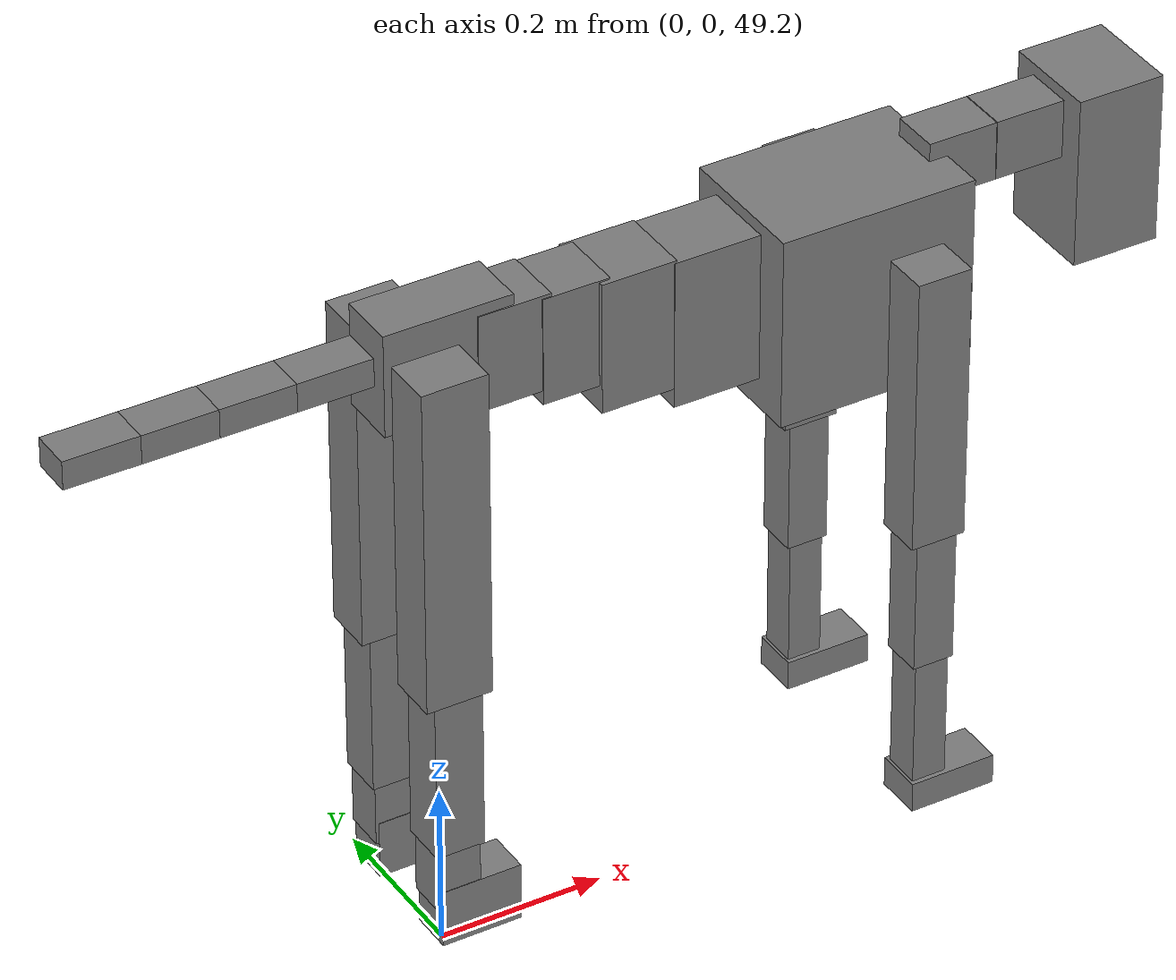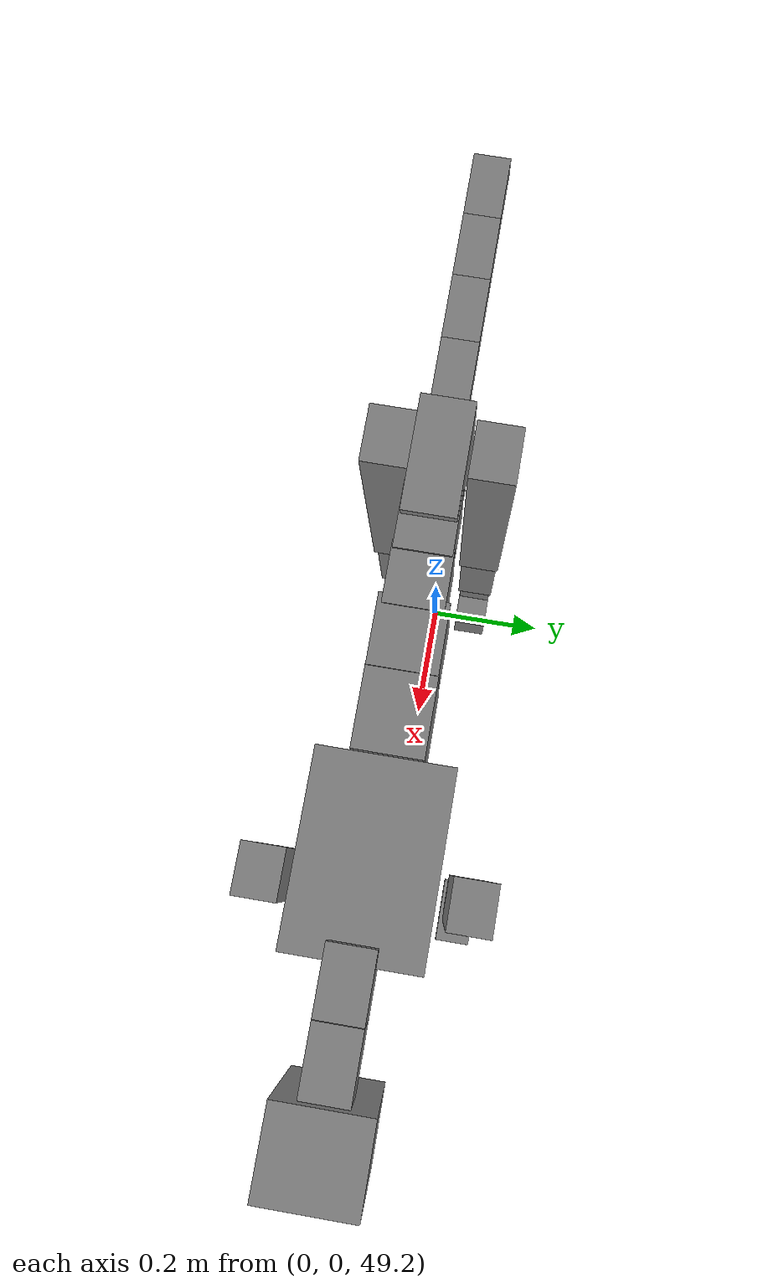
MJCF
<mujoco model="dog">

    <default>
        <joint armature="0.02" stiffness="1" damping="0.2" limited="true"/>
        <geom condim="3" friction="1 0.05 0.05" margin="0.01"/>
        <motor ctrllimited="true" ctrlrange="-1.0 1.0" forcelimited="true" gear="50"/>
    </default>

    <compiler inertiafromgeom="true" angle="radian"/>

    <option timestep="0.016" iterations="50" tolerance="1e-10" solver="Newton" jacobian="dense" cone="pyramidal"/>

    <size nconmax="20000" njmax="60000" nstack="5000000"/>
    <visual>
        <map force="0.1" zfar="30"/>
        <rgba haze="0.15 0.25 0.35 1"/>
        <quality shadowsize="2048"/>
        <global offwidth="800" offheight="800"/>
    </visual>

    <asset>
        <texture type="skybox" builtin="gradient" rgb1="0.3 0.5 0.7" rgb2="0 0 0" width="512" height="512"/>
        <texture name="texplane" type="2d" builtin="checker" rgb1=".2 .3 .4" rgb2=".1 0.15 0.2" width="512" height="512"
                 mark="cross" markrgb=".8 .8 .8"/>
        <texture name="texgeom" type="cube" builtin="flat" mark="cross" width="127" height="1278" rgb1="0.8 0.6 0.4"
                 rgb2="0.8 0.6 0.4" markrgb="1 1 1" random="0.01"/>

        <material name="matplane" reflectance="0.3" texture="texplane" texrepeat="1 1" texuniform="true"/>
        <material name="matgeom" texture="texgeom" texuniform="true" rgba="0.8 0.6 .4 1"/>
    </asset>

    <worldbody>
        <geom name="floor" pos="0 0 0" size="0 0 .25" type="plane" material="matplane" condim="3"/>

        <light directional="false" diffuse=".2 .2 .2" specular="0 0 0" pos="0 0 5" dir="0 0 -1" castshadow="false"/>
        <light mode="targetbodycom" target="torso" directional="false" diffuse=".8 .8 .8" specular="0.3 0.3 0.3"
               pos="0 0 4.0" dir="0 0 -1"/>

        <body name="root" pos="0 0 50">
            <freejoint name="root_1"/>
            <geom type="box" pos="0 0 -0.02" size="0.0774  0.0358  0.063" density="2030"/>

            <body name="spine1" pos="0.054 0 0">
                <joint name="spine1_y" axis="0 1 0" range="0 0.7" limited="true"/>
                <geom type="box" pos="0.02375 0 -0.03" size="0.04375  0.0375  0.05985" density="2030"/>

                <body name="spine2" pos="0.0612 0 0">
                    <joint name="spine2_y" axis="0 1 0" range="-0.15 0.15" limited="true"/>
                    <geom type="box" pos="0.03555  0  -0.04" size="0.04055  0.039  0.06615" density="2030"/>

                    <body name="spine3" pos="0.0730 0 0">
                        <joint name="spine3_y" axis="0 1 0" range="-0.15 0.15" limited="true"/>
                        <geom type="box" pos="0.03555  0  -0.057" size="0.04555  0.0445  0.081" density="2030"/>

                        <body name="spine4" pos="0.0780 0 0">
                            <joint name="spine4_y" axis="0 1 0" range="-0.15 0.15" limited="true"/>
                            <geom type="box" pos="0.05265  0  -0.07" size="0.05265  0.045  0.09135" density="2030"/>

                            <body name="torso" pos="0.1082 0 0">
                                <joint name="torso_y" axis="0 1 0" range="-0.15 0.15" limited="true"/>
                                <geom type="box" pos="0.11925  0  -0.085" size="0.11925  0.085  0.11745"
                                      density="2030"/>

                                <body name="neck1" pos="0.2160  0   0.0180">
                                    <joint name="neck1_y" axis="0 1 0" range="-1.2  -1" limited="true"/>
                                    <geom type="box" pos="0.0423  0  0" size="0.0423  0.03  0.036" density="2325"/>

                                    <body name="neck2" pos="0.0853  0  0">
                                        <joint name="neck2_y" axis="0 1 0" range="0.1  0" limited="true"/>
                                        <geom type="box" pos="0.0423  0  0" size="0.0423  0.03  0.036" density="2325"/>

                                        <body name="head" pos="0.0853  0  0">
                                            <joint name="head_y" axis="0 1 0" range="-0.3  -0.2" limited="true"/>
                                            <geom type="box" pos="0.0531  0  -0.055" size="0.0531  0.06  0.1044"
                                                  density="4030"/>

                                        </body>
                                    </body>
                                </body>

                                <body name="front_shoulder" pos="0.156  0   -0.0480">
                                    <joint name="front_shoulder_y" axis="0 1 0" range="-1 1.5" limited="true"/>
                                    <geom type="box" pos="0 0.13 -0.1441" size="0.0330  0.0282  0.1708" density="1158"/>
                                    <geom type="box" pos="0 -0.13 -0.1441" size="0.0330  0.0282  0.1708"
                                          density="1158"/>

                                    <body name="front_elbow" pos="0  0  -0.2883">
                                        <joint name="front_elbow_y" axis="0 1 0" range="-2 0" limited="true"/>
                                        <geom type="box" pos="0 0.13 -0.0957" size="0.0250  0.0256  0.0957"
                                              density="1081"/>
                                        <geom type="box" pos="0 -0.13 -0.0957" size="0.0250  0.0256  0.0957"
                                              density="1081"/>

                                        <body name="front_wrist" pos="0  0  -0.1914">
                                            <joint name="front_wrist_y" axis="0 1 0" range="-0.2 0" limited="true"/>
                                            <geom type="box" pos="0 0.13 -0.0858" size="0.0207  0.0230  0.0990"
                                                  density="1664"/>
                                            <geom type="box" pos="0 -0.13 -0.0858" size="0.0207  0.0230  0.0990"
                                                  density="1664"/>

                                            <body name="front_finger_end" pos="0  0  -0.1717">
                                                <joint name="front_finger_y" axis="0 1 0" range="-0.4 1"
                                                       limited="true"/>
                                                <geom type="box" pos="0.0287  0.13  -0.0034"
                                                      size="0.0527  0.0287  0.0184" density="1515"/>
                                                <geom type="box" pos="0.0287  -0.13  -0.0034"
                                                      size="0.0527  0.0287  0.0184" density="1515"/>

                                            </body>

                                        </body>
                                    </body>
                                </body>

                            </body>
                        </body>
                    </body>
                </body>
            </body>

            <body name="back_hip" pos="-0.03 0 -0.018">
                <joint name="back_hip_y" axis="0 1 0" range="-1.5 0.3" limited="true"/>
                <geom type="box" pos="0 0.07 -0.1806" size="0.0398  0.0312  0.2034" density="1154"/>
                <geom type="box" pos="0 -0.07 -0.1806" size="0.0398  0.0312  0.2034" density="1154"/>

                <body name="back_knee" pos="0  0  -0.3613">
                    <joint name="back_knee_y" axis="0 1 0" range="0 2.8" limited="true"/>
                    <geom type="box" pos="0 0.07 -0.1034" size="0.0292  0.0288  0.1189" density="1227"/>
                    <geom type="box" pos="0 -0.07 -0.1034" size="0.0292  0.0288  0.1189" density="1227"/>

                    <body name="back_ankle" pos="0  0  -0.2067">
                        <joint name="back_ankle_y" axis="0 1 0" range="-2.2 0" limited="true"/>
                        <geom type="box" pos="0 0.07 -0.0408" size="0.0256  0.0256  0.0521" density="1284"/>
                        <geom type="box" pos="0 -0.07 -0.0408" size="0.0256  0.0256  0.0521" density="1284"/>

                        <body name="back_toe_end" pos="0  0  -0.0816">
                            <joint name="back_toe_y" axis="0 1 0" range="-0.4 1" limited="true"/>
                            <geom type="box" pos="0.0265  0.07  -0.0211" size="0.0485  0.0265  0.0361" density="1515"/>
                            <geom type="box" pos="0.0265  -0.07  -0.0211" size="0.0485  0.0265  0.0361" density="1515"/>

                        </body>
                    </body>
                </body>
            </body>

            <body name="tail1" pos="-0.074 0 -0.006">
                <joint name="tail1_y" axis="0 1 0" range="-0.2 0.2" limited="true"/>
                <geom type="box" pos="-0.0536  0  0" size="0.045  0.025  0.0175" density="1587"/>

                <body name="tail2" pos="-0.09 0 0">
                    <joint name="tail2_y" axis="0 1 0" range="-0.2 0.2" limited="true"/>
                    <geom type="box" pos="-0.0536  0  0" size="0.045  0.025  0.0175" density="1587"/>

                    <body name="tail3" pos="-0.09 0 0">
                        <joint name="tail3_y" axis="0 1 0" range="-0.2 0.2" limited="true"/>
                        <geom type="box" pos="-0.0536  0  0" size="0.045  0.025  0.0175" density="1587"/>

                        <body name="tail4" pos="-0.09 0 0">
                            <joint name="tail4_y" axis="0 1 0" range="-0.2 0.2" limited="true"/>
                            <geom type="box" pos="-0.0536  0  0" size="0.045  0.025  0.0175" density="1587"/>

                        </body>
                    </body>
                </body>
            </body>
        </body>
    </worldbody>

    <actuator>
        <motor joint="spine1_y" forcerange="-150 150     "/>
        <motor joint="spine2_y" forcerange="-150 150     "/>
        <motor joint="spine3_y" forcerange="-150 150     "/>
        <motor joint="spine4_y" forcerange="-150 150     "/>
        <motor joint="torso_y" forcerange="-150 150     "/>
        <motor joint="neck1_y" forcerange="-100 100       "/>
        <motor joint="neck2_y" forcerange="-100 100       "/>
        <motor joint="head_y" forcerange="-150 150       "/>
        <motor joint="front_shoulder_y" forcerange="-158.05 130.10"/>
        <motor joint="front_elbow_y" forcerange="-121.54 164.63"/>
        <motor joint="front_wrist_y" forcerange="-69.39 114.99"/>
        <motor joint="front_finger_y" forcerange="-69.19 44.07"/>
        <motor joint="back_hip_y" forcerange="-323.28 293.24"/>
        <motor joint="back_knee_y" forcerange="-234.58 383.74"/>
        <motor joint="back_angle_y" forcerange="-230.39 79.48"/>
        <motor joint="back_toe_y" forcerange="-52.04 79.62"/>
        <motor joint="tail1_y" forcerange="-50 50     "/>
        <motor joint="tail2_y" forcerange="-50 50     "/>
        <motor joint="tail3_y" forcerange="-50 50     "/>
        <motor joint="tail4_y" forcerange="-50 50     "/>
    </actuator>
</mujoco>
